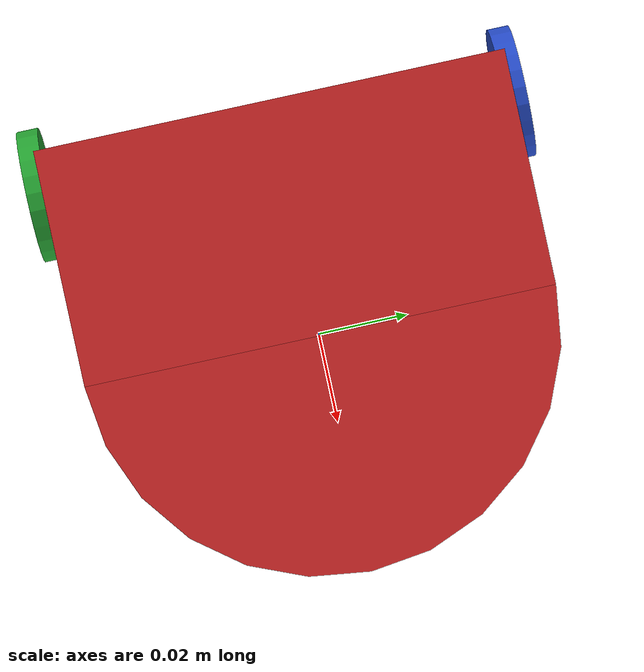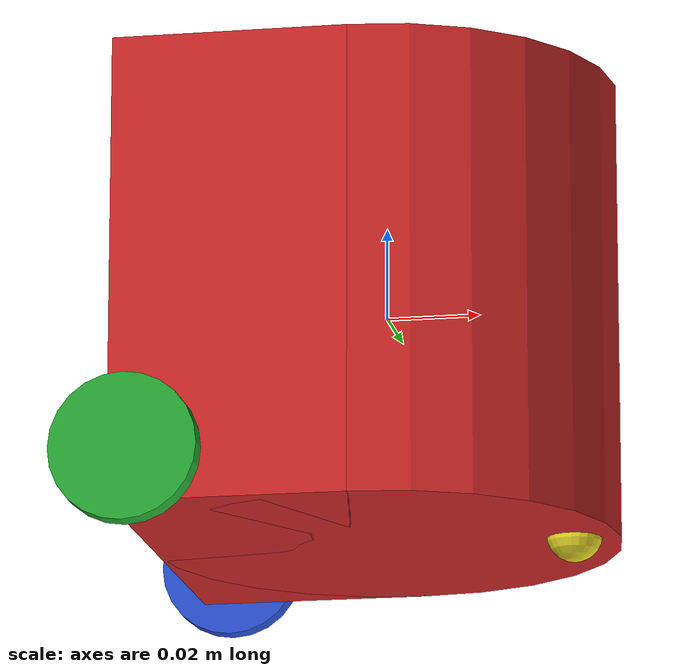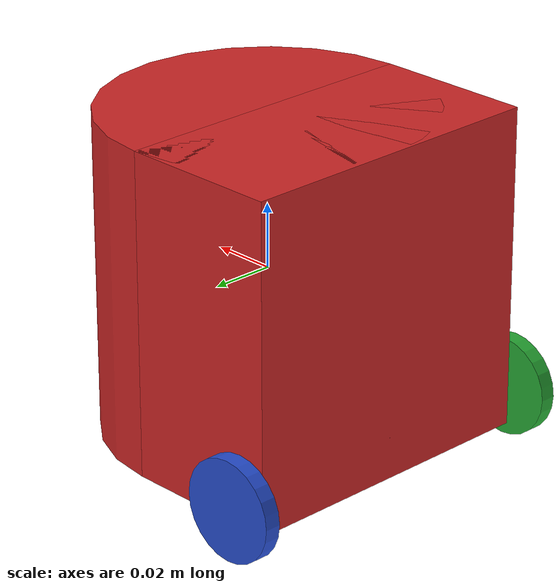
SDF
<sdf version='1.7'>
  <model name='GRITSBot X'>
    <link name='base_link'>
      <inertial>
        <pose>0 0 0 0 -0 0</pose>
        <mass>1</mass>
        <inertia>
          <ixx>0.00870027</ixx>
          <ixy>-4.75766e-05</ixy>
          <ixz>0.000111605</ixz>
          <iyy>0.00861954</iyy>
          <iyz>-3.54223e-06</iyz>
          <izz>0.0146127</izz>
        </inertia>
      </inertial>
      <collision name='base_link_collision'>
        <pose>-0.025 0 0 0 -0 0</pose>
        <geometry>
          <box>
            <size>0.05 0.1 0.1</size>
          </box>
        </geometry>
        <surface>
          <contact>
            <ode/>
          </contact>
          <friction>
            <ode/>
          </friction>
        </surface>
      </collision>
      <collision name='base_link_collision_1'>
        <pose>0 0 0 0 -0 0</pose>
        <geometry>
          <cylinder>
            <length>0.1</length>
            <radius>0.05</radius>
          </cylinder>
        </geometry>
        <surface>
          <contact>
            <ode/>
          </contact>
          <friction>
            <ode/>
          </friction>
        </surface>
      </collision>
      <visual name='base_link_visual'>
        <pose>-0.025 0 0 0 -0 0</pose>
        <geometry>
          <box>
            <size>0.05 0.1 0.1</size>
          </box>
        </geometry>
        <material>
          <script>
            <name>Gazebo/Red</name>
            <uri>file://media/materials/scripts/gazebo.material</uri>
          </script>
        </material>
      </visual>
      <visual name='base_link_visual_1'>
        <pose>0 0 0 0 -0 0</pose>
        <geometry>
          <cylinder>
            <length>0.1</length>
            <radius>0.05</radius>
          </cylinder>
        </geometry>
        <material>
          <script>
            <name>Gazebo/Red</name>
            <uri>file://media/materials/scripts/gazebo.material</uri>
          </script>
        </material>
      </visual>
      <gravity>1</gravity>
      <velocity_decay/>
    </link>
    <joint name='caster_joint' type='ball'>
      <pose relative_to='base_link'>0.04 0 -0.049 0 -0 0</pose>
      <parent>base_link</parent>
      <child>caster_link</child>
    </joint>
    <link name='caster_link'>
      <pose relative_to='caster_joint'>0 0 0 0 -0 0</pose>
      <inertial>
        <pose>0 0 0 0 -0 0</pose>
        <mass>2</mass>
        <inertia>
          <ixx>0.001</ixx>
          <ixy>0</ixy>
          <ixz>0</ixz>
          <iyy>0.001</iyy>
          <iyz>0</iyz>
          <izz>0.001</izz>
        </inertia>
      </inertial>
      <collision name='caster_link_collision'>
        <pose>0 0 0 0 -0 0</pose>
        <geometry>
          <sphere>
            <radius>0.006</radius>
          </sphere>
        </geometry>
        <surface>
          <contact>
            <ode>
              <kp>1e+07</kp>
              <kd>1</kd>
            </ode>
          </contact>
          <friction>
            <ode>
              <mu>1</mu>
              <mu2>1</mu2>
              <fdir1>1 0 0</fdir1>
            </ode>
          </friction>
        </surface>
      </collision>
      <visual name='caster_link_visual'>
        <pose>0 0 0 0 -0 0</pose>
        <geometry>
          <sphere>
            <radius>0.006</radius>
          </sphere>
        </geometry>
        <material>
          <script>
            <name>Gazebo/Yellow</name>
            <uri>file://media/materials/scripts/gazebo.material</uri>
          </script>
        </material>
      </visual>
      <gravity>1</gravity>
      <velocity_decay/>
    </link>
    <joint name='wheel_left_joint' type='revolute'>
      <pose relative_to='base_link'>-0.045 0.056 -0.0405 -1.57 0 0</pose>
      <parent>base_link</parent>
      <child>wheel_left_link</child>
      <axis>
        <xyz>0 0 1</xyz>
        <limit>
          <lower>-1e+16</lower>
          <upper>1e+16</upper>
        </limit>
        <dynamics>
          <spring_reference>0</spring_reference>
          <spring_stiffness>0</spring_stiffness>
        </dynamics>
      </axis>
    </joint>
    <link name='wheel_left_link'>
      <pose relative_to='wheel_left_joint'>0 0 0 0 -0 0</pose>
      <inertial>
        <pose>0 0 0 0 -0 0</pose>
        <mass>1</mass>
        <inertia>
          <ixx>1.11756e-05</ixx>
          <ixy>-4.23698e-11</ixy>
          <ixz>-5.93817e-09</ixz>
          <iyy>1.11924e-05</iyy>
          <iyz>-1.44001e-11</iyz>
          <izz>2.07126e-05</izz>
        </inertia>
      </inertial>
      <collision name='wheel_left_link_collision'>
        <pose>0 0 0 0 -0 0</pose>
        <geometry>
          <cylinder>
            <length>0.005</length>
            <radius>0.0155</radius>
          </cylinder>
        </geometry>
        <surface>
          <contact>
            <ode>
              <kp>1e+07</kp>
              <kd>1</kd>
            </ode>
          </contact>
          <friction>
            <ode>
              <mu>1</mu>
              <mu2>1</mu2>
              <fdir1>1 0 0</fdir1>
            </ode>
          </friction>
        </surface>
      </collision>
      <visual name='wheel_left_link_visual'>
        <pose>0 0 0 0 -0 0</pose>
        <geometry>
          <cylinder>
            <length>0.005</length>
            <radius>0.0155</radius>
          </cylinder>
        </geometry>
        <material>
          <script>
            <name>Gazebo/Blue</name>
            <uri>file://media/materials/scripts/gazebo.material</uri>
          </script>
        </material>
      </visual>
      <gravity>1</gravity>
      <velocity_decay/>
    </link>
    <joint name='wheel_right_joint' type='revolute'>
      <pose relative_to='base_link'>-0.045 -0.056 -0.0405 -1.57 0 0</pose>
      <parent>base_link</parent>
      <child>wheel_right_link</child>
      <axis>
        <xyz>0 0 1</xyz>
        <limit>
          <lower>-1e+16</lower>
          <upper>1e+16</upper>
        </limit>
        <dynamics>
          <spring_reference>0</spring_reference>
          <spring_stiffness>0</spring_stiffness>
        </dynamics>
      </axis>
    </joint>
    <link name='wheel_right_link'>
      <pose relative_to='wheel_right_joint'>0 0 0 0 -0 0</pose>
      <inertial>
        <pose>0 0 0 0 -0 0</pose>
        <mass>1</mass>
        <inertia>
          <ixx>1.11756e-05</ixx>
          <ixy>-4.23698e-11</ixy>
          <ixz>-5.93817e-09</ixz>
          <iyy>1.11924e-05</iyy>
          <iyz>-1.44001e-11</iyz>
          <izz>2.07126e-05</izz>
        </inertia>
      </inertial>
      <collision name='wheel_right_link_collision'>
        <pose>0 0 0 0 -0 0</pose>
        <geometry>
          <cylinder>
            <length>0.005</length>
            <radius>0.0155</radius>
          </cylinder>
        </geometry>
        <surface>
          <contact>
            <ode>
              <kp>1e+07</kp>
              <kd>1</kd>
            </ode>
          </contact>
          <friction>
            <ode>
              <mu>1</mu>
              <mu2>1</mu2>
              <fdir1>1 0 0</fdir1>
            </ode>
          </friction>
        </surface>
      </collision>
      <visual name='wheel_right_link_visual'>
        <pose>0 0 0 0 -0 0</pose>
        <geometry>
          <cylinder>
            <length>0.005</length>
            <radius>0.0155</radius>
          </cylinder>
        </geometry>
        <material>
          <script>
            <name>Gazebo/Green</name>
            <uri>file://media/materials/scripts/gazebo.material</uri>
          </script>
        </material>
      </visual>
      <gravity>1</gravity>
      <velocity_decay/>
    </link>
    <static>0</static>
    <plugin name='gritsbot_diff_drive' filename='libgazebo_ros_diff_drive.so'>
      <ros/>
      <update_rate>30</update_rate>
      <left_joint>wheel_left_joint</left_joint>
      <right_joint>wheel_right_joint</right_joint>
      <wheel_separation>0.105</wheel_separation>
      <wheel_diameter>0.031</wheel_diameter>
      <max_wheel_torque>20</max_wheel_torque>
      <max_wheel_acceleration>1.0</max_wheel_acceleration>
      <command_topic>cmd_vel</command_topic>
      <publish_odom>1</publish_odom>
      <publish_odom_tf>1</publish_odom_tf>
      <publish_wheel_tf>0</publish_wheel_tf>
      <odometry_topic>odom</odometry_topic>
      <odometry_frame>odom</odometry_frame>
      <robot_base_frame>base_link</robot_base_frame>
    </plugin>
  </model>
</sdf>
